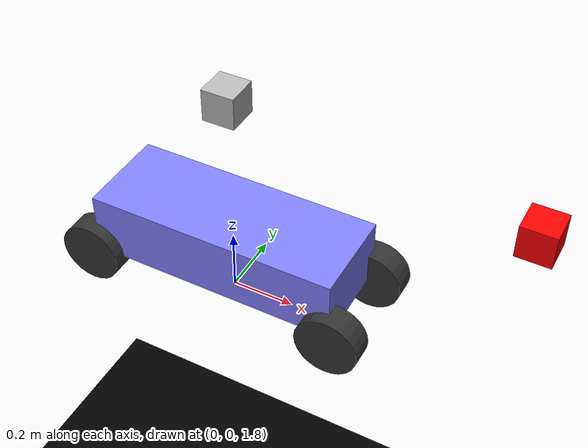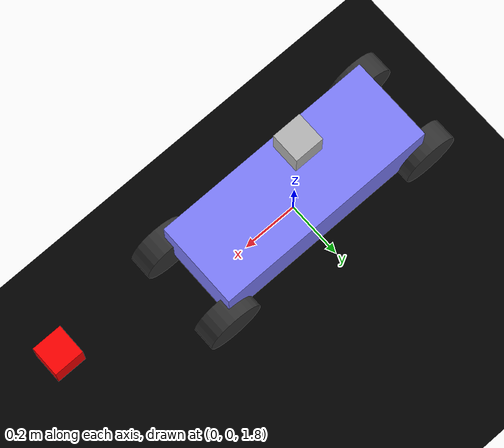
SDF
<?xml version="1.0" ?>

<!--
  You can echo lidar messages using:
    ign topic -e -t /lidar
-->

<sdf version="1.6">
  <world name="ackermann_steering">

    <physics name="1ms" type="ignored">
      <max_step_size>0.001</max_step_size>
      <real_time_factor>1.0</real_time_factor>
    </physics>
    <plugin
      filename="ignition-gazebo-physics-system"
      name="gz::sim::systems::Physics">
    </plugin>
    <plugin
      filename="ignition-gazebo-user-commands-system"
      name="gz::sim::systems::UserCommands">
    </plugin>
    <plugin
      filename="ignition-gazebo-scene-broadcaster-system"
      name="gz::sim::systems::SceneBroadcaster">
    </plugin>

    <!-- visualize_lidar -->
    <plugin
      filename="libignition-gazebo-sensors-system.so"
      name="ignition::gazebo::systems::Sensors">
      <render_engine>ogre2</render_engine>
    </plugin>

    <gui fullscreen="0">

      <!-- 3D scene -->
      <plugin filename="MinimalScene" name="3D View">
        <ignition-gui>
          <title>3D View</title>
          <property type="bool" key="showTitleBar">false</property>
          <property type="string" key="state">docked</property>
        </ignition-gui>

        <engine>ogre2</engine>
        <scene>scene</scene>
        <ambient_light>0.4 0.4 0.4</ambient_light>
        <background_color>0.8 0.8 0.8</background_color>
        <camera_pose>-6 0 6 0 0.5 0</camera_pose>
      </plugin>

      <!-- Plugins that add functionality to the scene -->
      <plugin filename="EntityContextMenuPlugin" name="Entity context menu">
        <ignition-gui>
          <property key="state" type="string">floating</property>
          <property key="width" type="double">5</property>
          <property key="height" type="double">5</property>
          <property key="showTitleBar" type="bool">false</property>
        </ignition-gui>
      </plugin>
      <plugin filename="GzSceneManager" name="Scene Manager">
        <ignition-gui>
          <property key="resizable" type="bool">false</property>
          <property key="width" type="double">5</property>
          <property key="height" type="double">5</property>
          <property key="state" type="string">floating</property>
          <property key="showTitleBar" type="bool">false</property>
        </ignition-gui>
      </plugin>
      <plugin filename="InteractiveViewControl" name="Interactive view control">
        <ignition-gui>
          <property key="resizable" type="bool">false</property>
          <property key="width" type="double">5</property>
          <property key="height" type="double">5</property>
          <property key="state" type="string">floating</property>
          <property key="showTitleBar" type="bool">false</property>
        </ignition-gui>
      </plugin>
      <plugin filename="CameraTracking" name="Camera Tracking">
        <ignition-gui>
          <property key="resizable" type="bool">false</property>
          <property key="width" type="double">5</property>
          <property key="height" type="double">5</property>
          <property key="state" type="string">floating</property>
          <property key="showTitleBar" type="bool">false</property>
        </ignition-gui>
      </plugin>
      <!-- World control -->
      <plugin filename="WorldControl" name="World control">
        <ignition-gui>
          <title>World control</title>
          <property type="bool" key="showTitleBar">false</property>
          <property type="bool" key="resizable">false</property>
          <property type="double" key="height">72</property>
          <property type="double" key="width">121</property>
          <property type="double" key="z">1</property>

          <property type="string" key="state">floating</property>
          <anchors target="3D View">
            <line own="left" target="left"/>
            <line own="bottom" target="bottom"/>
          </anchors>
        </ignition-gui>

        <play_pause>true</play_pause>
        <step>true</step>
        <start_paused>true</start_paused>
        <use_event>true</use_event>

      </plugin>

      <!-- World statistics -->
      <plugin filename="WorldStats" name="World stats">
        <ignition-gui>
          <title>World stats</title>
          <property type="bool" key="showTitleBar">false</property>
          <property type="bool" key="resizable">false</property>
          <property type="double" key="height">110</property>
          <property type="double" key="width">290</property>
          <property type="double" key="z">1</property>

          <property type="string" key="state">floating</property>
          <anchors target="3D View">
            <line own="right" target="right"/>
            <line own="bottom" target="bottom"/>
          </anchors>
        </ignition-gui>

        <sim_time>true</sim_time>
        <real_time>true</real_time>
        <real_time_factor>true</real_time_factor>
        <iterations>true</iterations>
      </plugin>

      <plugin filename="VisualizeLidar" name="Visualize Lidar">
      </plugin>

      <plugin filename="ImageDisplay" name="Visualize camera">
      </plugin>

      <plugin filename="Teleop" name="Veichle control">
      	<topic>/model/vehicle_blue/cmd_vel</topic>
      </plugin>

      <!-- Inspector -->
      <plugin filename="ComponentInspector" name="Component inspector">
        <ignition-gui>
          <property type="string" key="state">docked</property>
        </ignition-gui>
      </plugin>

      <!-- Entity tree -->
      <plugin filename="EntityTree" name="Entity tree">
        <ignition-gui>
          <property type="string" key="state">docked</property>
        </ignition-gui>
      </plugin>
    </gui>

    <light type="directional" name="sun">
      <cast_shadows>true</cast_shadows>
      <pose>0 0 10 0 0 0</pose>
      <diffuse>1 1 1 1</diffuse>
      <specular>0.5 0.5 0.5 1</specular>
      <attenuation>
        <range>1000</range>
        <constant>0.9</constant>
        <linear>0.01</linear>
        <quadratic>0.001</quadratic>
      </attenuation>
      <direction>-0.5 0.1 -0.9</direction>
    </light>

    <model name="ground_plane">
      <static>true</static>
      <link name="link">
        <collision name="collision">
          <geometry>
            <plane>
              <normal>0 0 1</normal>
              <size>100 100</size>
            </plane>
          </geometry>
          <surface>
            <friction>
              <ode>
                <mu>50</mu>
              </ode>
            </friction>
          </surface>
        </collision>
        <visual name="visual">
          <geometry>
            <plane>
              <normal>0 0 1</normal>
              <size>100 100</size>
            </plane>
          </geometry>
          <material>
            <ambient>1.0 1.0 1.0 1</ambient>
            <diffuse>0.0 0.0 0.0 1</diffuse>
            <specular>0.0 0.0 0.0 1</specular>
          </material>
        </visual>
      </link>
    </model>

    <model name='vehicle_blue'>
      <pose>0 0 2 0 0 0</pose>

      <link name='chassis'>
        <pose>0 0 0 0 0 0</pose>
        <inertial>
          <mass>20</mass>
          <inertia>
            <ixx>0.216667</ixx>
            <ixy>0</ixy>
            <ixz>0</ixz>
            <iyy>1.216667</iyy>
            <iyz>0</iyz>
            <izz>1.133333</izz>
          </inertia>
        </inertial>
        <visual name='visual'>
          <geometry>
            <box>
              <size>0.80 0.3 0.2</size>
            </box>
          </geometry>
          <material>
            <ambient>0.5 0.5 1.0 1</ambient>
            <diffuse>0.5 0.5 1.0 1</diffuse>
            <specular>0.0 0.0 1.0 1</specular>
          </material>
        </visual>
        <collision name='collision'>
          <geometry>
            <box>
              <size>0.80 0.3 0.2</size>
            </box>
          </geometry>
        </collision>
      </link>

      <link name="lidar_link">
        <pose>0 0 0.5 0 0 0</pose>
        <inertial>
          <mass>0.1</mass>
          <inertia>
            <ixx>0.000166667</ixx>
            <iyy>0.000166667</iyy>
            <izz>0.000166667</izz>
          </inertia>
        </inertial>
        <collision name="collision">
          <geometry>
            <box>
              <size>0.1 0.1 0.1</size>
            </box>
          </geometry>
        </collision>
        <visual name="visual">
          <geometry>
            '<box>              <size>0.1 0.1 0.1</size>
            </box>
          </geometry>
        </visual>
        <sensor name='gpu_lidar' type='gpu_lidar'>
        <pose>0 0 0 0 0 0</pose>
          <topic>lidarScan</topic>
          <update_rate>10</update_rate>
          <lidar>
            <scan>
              <horizontal>
                <samples>640</samples>
                <resolution>1</resolution>
                <min_angle>-1.396263</min_angle>
                <max_angle>1.396263</max_angle>
              </horizontal>
              <vertical>
                <samples>1</samples>
                <resolution>1</resolution>
                <min_angle>0.0</min_angle>
                <max_angle>0.0</max_angle>
              </vertical>
            </scan>
            <range>
              <min>0.08</min>
              <max>10.0</max>
              <resolution>0.01</resolution>
            </range>
          </lidar>
          <alwaysOn>1</alwaysOn>
          <visualize>true</visualize>
        </sensor>
      </link>

      <link name="camera_depth_frame">
        <pose>0.9 0 0.4 0 0 0</pose>
        <visual name="camera_visual">
          <geometry>
            <box>
              <size>0.1 0.1 0.1</size>
            </box>
          </geometry>
          <material>
            <ambient>1.0 0.0 0.0 1</ambient>
            <diffuse>1.0 0.0 0.0 1</diffuse>
            <specular>1.0 0.0 0.0 1</specular>
          </material>
        </visual>
        <sensor name="depth_camera" type="camera">
          <alwaysOn>true</alwaysOn>
          <visualize>false</visualize>
          <update_rate>10</update_rate>
          <camera name = "camera">
            <horizontal_fov>1.047</horizontal_fov>
            <image>
              <format>R8G8B8</format>
              <width>640</width>
              <height>480</height>
            </image>
            <clip>
              <near>0.05</near>
              <far>100</far>
            </clip>
          </camera>
          <plugin name = "depth_camera_controller" filename = "libgazebo_ros_camera.so">
            <camera_name>depth_camera</camera_name>
            <frame_name>camera_depth_frame</frame_name>
            <hack_baseline>0</hack_baseline>
            <min_depth>0.001</min_depth>
          </plugin>
        </sensor>
      </link>

      <link name='front_left_wheel'>
        <pose>0.408 -0.15 -0.1 -1.5707 0 0</pose>
        <inertial>
          <mass>0.2</mass>
          <inertia>
            <ixx>0.0006</ixx>
            <ixy>0</ixy>
            <ixz>0</ixz>
            <iyy>0.001</iyy>
            <iyz>0</iyz>
            <izz>0.0006</izz>
          </inertia>
        </inertial>
        <visual name='visual'>
          <geometry>
            <cylinder>
              <length>0.08</length>
              <radius>0.1</radius>
            </cylinder>
          </geometry>
          <material>
            <ambient>0.2 0.2 0.2 1</ambient>
            <diffuse>0.2 0.2 0.2 1</diffuse>
            <specular>0.2 0.2 0.2 1</specular>
          </material>
        </visual>
        <collision name='collision'>
          <geometry>
            <cylinder>
              <length>0.08</length>
              <radius>0.1</radius>
            </cylinder>
          </geometry>
          <surface>
            <friction>
              <ode>
                <mu>0.998000</mu>
                <mu2>0.998000</mu2>
                <fdir1>0.000000 0.000000 0.000000</fdir1>
                <slip1>0.000000</slip1>
                <slip2>0.000000</slip2>
              </ode>
            </friction>
          </surface>
        </collision>
      </link>

      <link name='rear_left_wheel'>
        <pose>-0.408 -0.15 -0.1 -1.5707 0 0</pose>
        <inertial>
          <mass>0.2</mass>
          <inertia>
            <ixx>0.0006</ixx>
            <ixy>0</ixy>
            <ixz>0</ixz>
            <iyy>0.001</iyy>
            <iyz>0</iyz>
            <izz>0.0006</izz>
          </inertia>
        </inertial>
        <visual name='visual'>
          <geometry>
            <cylinder>
              <length>0.08</length>
              <radius>0.1</radius>
            </cylinder>
          </geometry>
          <material>
            <ambient>0.2 0.2 0.2 1</ambient>
            <diffuse>0.2 0.2 0.2 1</diffuse>
            <specular>0.2 0.2 0.2 1</specular>
          </material>
        </visual>
        <collision name='collision'>
          <geometry>
            <cylinder>
              <length>0.08</length>
              <radius>0.1</radius>
            </cylinder>
          </geometry>
          <surface>
            <friction>
              <ode>
                <mu>0.998000</mu>
                <mu2>0.998000</mu2>
                <fdir1>0.000000 0.000000 0.000000</fdir1>
                <slip1>0.000000</slip1>
                <slip2>0.000000</slip2>
              </ode>
            </friction>
          </surface>
        </collision>
      </link>

      <link name='front_right_wheel'>
        <pose>0.408 0.15 -0.1 -1.5707 0 0</pose>
        <inertial>
          <mass>0.2</mass>
          <inertia>
            <ixx>0.0006</ixx>
            <ixy>0</ixy>
            <ixz>0</ixz>
            <iyy>0.001</iyy>
            <iyz>0</iyz>
            <izz>0.0006</izz>
          </inertia>
        </inertial>
        <visual name='visual'>
          <geometry>
            <cylinder>
              <length>0.08</length>
              <radius>0.1</radius>
            </cylinder>
          </geometry>
          <material>
            <ambient>0.2 0.2 0.2 1</ambient>
            <diffuse>0.2 0.2 0.2 1</diffuse>
            <specular>0.2 0.2 0.2 1</specular>
          </material>
        </visual>
        <collision name='collision'>
          <geometry>
            <cylinder>
              <length>0.08</length>
              <radius>0.1</radius>
            </cylinder>
          </geometry>
          <surface>
            <friction>
              <ode>
                <mu>0.998000</mu>
                <mu2>0.998000</mu2>
                <fdir1>0.000000 0.000000 0.000000</fdir1>
                <slip1>0.000000</slip1>
                <slip2>0.000000</slip2>
              </ode>
            </friction>
          </surface>
        </collision>
      </link>

      <link name='rear_right_wheel'>
        <pose>-0.408 0.15 -0.1 -1.5707 0 0</pose>
        <inertial>
          <mass>0.2</mass>
          <inertia>
            <ixx>0.0006</ixx>
            <ixy>0</ixy>
            <ixz>0</ixz>
            <iyy>0.001</iyy>
            <iyz>0</iyz>
            <izz>0.0006</izz>
          </inertia>
        </inertial>
        <visual name='visual'>
          <geometry>
            <cylinder>
              <length>0.08</length>
              <radius>0.1</radius>
            </cylinder>
          </geometry>
          <material>
            <ambient>0.2 0.2 0.2 1</ambient>
            <diffuse>0.2 0.2 0.2 1</diffuse>
            <specular>0.2 0.2 0.2 1</specular>
          </material>
        </visual>
        <collision name='collision'>
          <geometry>
            <cylinder>
              <length>0.08</length>
              <radius>0.1</radius>
            </cylinder>
          </geometry>
          <surface>
            <friction>
              <ode>
                <mu>0.998000</mu>
                <mu2>0.998000</mu2>
                <fdir1>0.000000 0.000000 0.000000</fdir1>
                <slip1>0.000000</slip1>
                <slip2>0.000000</slip2>
              </ode>
            </friction>
          </surface>
        </collision>
      </link>

      <link name="front_left_wheel_steering_link">
        <pose>0.4 -0.15 -0.1 0 0 0</pose>
        <visual name="steering_link_visual">
          <pose>0 0 0 0 0 0</pose>
          <geometry>
            <cylinder>
              <length>0.1</length>
              <radius>0.0003</radius>
            </cylinder>
          </geometry>
          <material>
            <ambient>1 1 1</ambient>
            <diffuse>1 1 1</diffuse>
          </material>
        </visual>
      </link>

      <link name="front_right_wheel_steering_link">
        <pose>0.4 0.15 -0.1 0 0 0</pose>
        <visual name="steering_link_visual">
          <pose>0 0 0 0 0 0</pose>
          <geometry>
            <cylinder>
              <length>0.1</length>
              <radius>0.0003</radius>
            </cylinder>
          </geometry>
          <material>
            <ambient>1 1 1</ambient>
            <diffuse>1 1 1</diffuse>
          </material>
        </visual>
      </link>

      <joint name='lidar_sensor_joint' type='fixed'>
        <parent>chassis</parent>
        <child>lidar_link</child>
      </joint>

      <joint name='camera_sensor_joint' type='fixed'>
        <parent>chassis</parent>
        <child>camera_depth_frame</child>
      </joint>

      <joint name="front_left_wheel_steering_joint" type="revolute">
        <child>front_left_wheel_steering_link</child>
        <parent>chassis</parent>
        <axis>
          <xyz>0 0 1</xyz>
          <limit>
            <lower>-0.3</lower>
            <upper>+0.3</upper>
            <velocity>1.0</velocity>
            <effort>25</effort>
          </limit>
          <use_parent_model_frame>1</use_parent_model_frame>
        </axis>
      </joint>

      <joint name="front_right_wheel_steering_joint" type="revolute">
        <parent>chassis</parent>
        <child>front_right_wheel_steering_link</child>
        <axis>
          <xyz>0 0 1</xyz>
          <limit>
            <lower>-0.3</lower>
            <upper>+0.3</upper>
            <velocity>1.0</velocity>
            <effort>25</effort>
          </limit>
        </axis>
      </joint>

      <joint name='front_left_wheel_joint' type='revolute'>
        <parent>front_left_wheel_steering_link</parent>
        <child>front_left_wheel</child>
        <axis>
          <xyz>0 0 1</xyz>
          <limit>
            <lower>-1.79769e+308</lower>
            <upper>1.79769e+308</upper>
          </limit>
        </axis>
      </joint>

      <joint name='front_right_wheel_joint' type='revolute'>
        <parent>front_right_wheel_steering_link</parent>
        <child>front_right_wheel</child>
        <axis>
          <xyz>0 0 1</xyz>
          <limit>
            <lower>-1.79769e+308</lower>
            <upper>1.79769e+308</upper>
          </limit>
        </axis>
      </joint>

      <joint name='rear_left_wheel_joint' type='revolute'>
        <parent>chassis</parent>
        <child>rear_left_wheel</child>
        <axis>
          <xyz>0 0 1</xyz>
          <limit>
            <lower>-1.79769e+308</lower>
            <upper>1.79769e+308</upper>
          </limit>
        </axis>
      </joint>

      <joint name='rear_right_wheel_joint' type='revolute'>
        <parent>chassis</parent>
        <child>rear_right_wheel</child>
        <axis>
          <xyz>0 0 1</xyz>
          <limit>
            <lower>-1.79769e+308</lower>
            <upper>1.79769e+308</upper>
          </limit>
        </axis>
      </joint>

      <plugin
        filename="ignition-gazebo-ackermann-steering-system"
        name="gz::sim::systems::AckermannSteering">
        <left_joint>front_left_wheel_joint</left_joint>
        <left_joint>rear_left_wheel_joint</left_joint>
        <right_joint>front_right_wheel_joint</right_joint>
        <right_joint>rear_right_wheel_joint</right_joint>
        <left_steering_joint>front_left_wheel_steering_joint</left_steering_joint>
        <right_steering_joint>front_right_wheel_steering_joint</right_steering_joint>
        <kingpin_width>0.3</kingpin_width>
        <steering_limit>0.3</steering_limit>
        <wheel_base>0.8</wheel_base>
        <wheel_separation>0.3</wheel_separation>
        <wheel_radius>0.1</wheel_radius>
        <min_velocity>-1</min_velocity>
        <max_velocity>100</max_velocity>
        <min_acceleration>-3</min_acceleration>
        <max_acceleration>3</max_acceleration>
      </plugin>

      <plugin
        filename="libignition-gazebo-diff-drive-system.so"
        name="ignition::gazebo::systems::DiffDrive">
        <left_joint>left_wheel_joint</left_joint>
        <right_joint>right_wheel_joint</right_joint>
        <wheel_separation>0.3</wheel_separation>
        <wheel_radius>0.1</wheel_radius>
        <odom_publish_frequency>0.1</odom_publish_frequency>
      </plugin>

    </model>

  </world>
</sdf>
